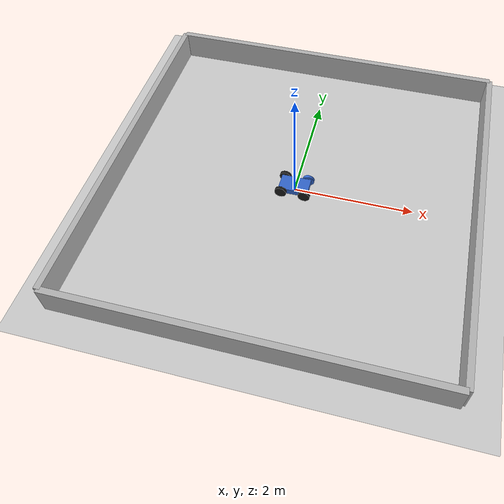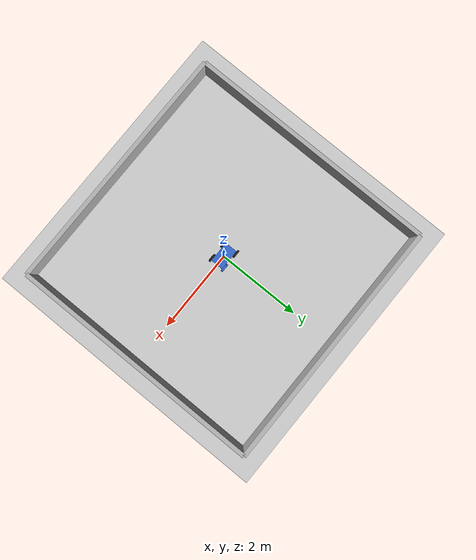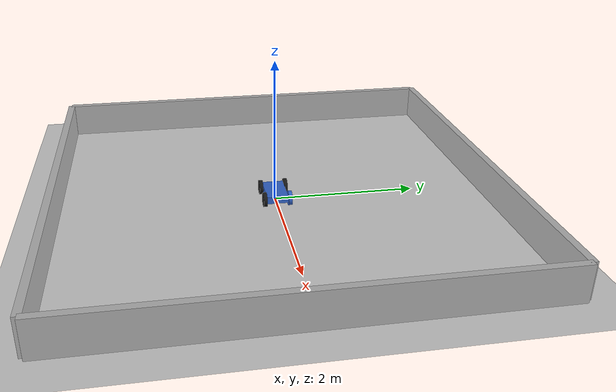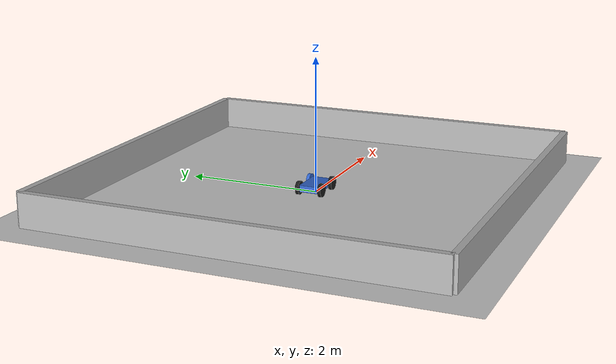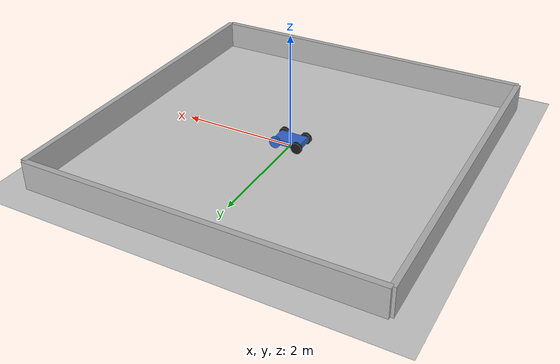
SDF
<?xml version="1.0" ?>
<sdf version="1.9">
  <world name="box_car_world">

    <plugin filename="gz-sim-physics-system" name="gz::sim::systems::Physics"/>
    <plugin filename="gz-sim-scene-broadcaster-system" name="gz::sim::systems::SceneBroadcaster"/>
    <!-- Sensors plugin removed: avoids Ogre2 headless crash in Docker (no camera, no rendering) -->

    <light name="sun" type="directional">
      <cast_shadows>true</cast_shadows>
      <pose>0 0 10 0 0 0</pose>
      <diffuse>1 1 1 1</diffuse>
      <specular>0.2 0.2 0.2 1</specular>
    </light>

    <model name="ground_plane">
      <static>true</static>
      <link name="link">
        <collision name="col">
          <geometry>
            <plane>
              <normal>0 0 1</normal>
              <size>100 100</size>
            </plane>
          </geometry>
        </collision>
        <visual name="vis">
          <geometry>
            <plane>
              <normal>0 0 1</normal>
              <size>100 100</size>
            </plane>
          </geometry>
          <material>
            <ambient>0.8 0.8 0.8 1</ambient>
            <diffuse>0.8 0.8 0.8 1</diffuse>
            <specular>0.1 0.1 0.1 1</specular>
          </material>
        </visual>
      </link>
    </model>

    <!-- Room walls: 6 m x 6 m around spawn at origin. Static, collision + visual. -->
    <model name="wall_north">
      <static>true</static>
      <pose>0 3 0.25 0 0 0</pose>
      <link name="link">
        <collision name="col">
          <geometry>
            <box><size>6 0.1 0.5</size></box>
          </geometry>
        </collision>
        <visual name="vis">
          <geometry>
            <box><size>6 0.1 0.5</size></box>
          </geometry>
          <material>
            <ambient>0.6 0.6 0.6 1</ambient>
            <diffuse>0.7 0.7 0.7 1</diffuse>
            <specular>0.1 0.1 0.1 1</specular>
          </material>
        </visual>
      </link>
    </model>
    <model name="wall_south">
      <static>true</static>
      <pose>0 -3 0.25 0 0 0</pose>
      <link name="link">
        <collision name="col">
          <geometry>
            <box><size>6 0.1 0.5</size></box>
          </geometry>
        </collision>
        <visual name="vis">
          <geometry>
            <box><size>6 0.1 0.5</size></box>
          </geometry>
          <material>
            <ambient>0.6 0.6 0.6 1</ambient>
            <diffuse>0.7 0.7 0.7 1</diffuse>
            <specular>0.1 0.1 0.1 1</specular>
          </material>
        </visual>
      </link>
    </model>
    <model name="wall_east">
      <static>true</static>
      <pose>3 0 0.25 0 0 0</pose>
      <link name="link">
        <collision name="col">
          <geometry>
            <box><size>0.1 6 0.5</size></box>
          </geometry>
        </collision>
        <visual name="vis">
          <geometry>
            <box><size>0.1 6 0.5</size></box>
          </geometry>
          <material>
            <ambient>0.6 0.6 0.6 1</ambient>
            <diffuse>0.7 0.7 0.7 1</diffuse>
            <specular>0.1 0.1 0.1 1</specular>
          </material>
        </visual>
      </link>
    </model>
    <model name="wall_west">
      <static>true</static>
      <pose>-3 0 0.25 0 0 0</pose>
      <link name="link">
        <collision name="col">
          <geometry>
            <box><size>0.1 6 0.5</size></box>
          </geometry>
        </collision>
        <visual name="vis">
          <geometry>
            <box><size>0.1 6 0.5</size></box>
          </geometry>
          <material>
            <ambient>0.6 0.6 0.6 1</ambient>
            <diffuse>0.7 0.7 0.7 1</diffuse>
            <specular>0.1 0.1 0.1 1</specular>
          </material>
        </visual>
      </link>
    </model>

    <include>
      <uri>model://box_car</uri>
      <pose>0 0 0.1 0 0 0</pose>
    </include>

  </world>
</sdf>

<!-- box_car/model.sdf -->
<sdf version="1.9">
  <model name="box_car">
    <pose>0 0 0.1 0 0 0</pose>

    <!-- Chassis: 0.5 x 0.3 x 0.1 m -->
    <link name="chassis">
      <inertial>
        <mass>5.0</mass>
        <inertia>
          <ixx>0.048</ixx><iyy>0.108</iyy><izz>0.142</izz>
          <ixy>0</ixy><ixz>0</ixz><iyz>0</iyz>
        </inertia>
      </inertial>
      <collision name="chassis_col">
        <geometry>
          <box><size>0.5 0.3 0.1</size></box>
        </geometry>
      </collision>
      <visual name="chassis_vis">
        <geometry>
          <box><size>0.5 0.3 0.1</size></box>
        </geometry>
        <material>
          <ambient>0.2 0.3 0.5 1</ambient>
          <diffuse>0.2 0.4 0.8 1</diffuse>
          <specular>0.3 0.3 0.3 1</specular>
        </material>
      </visual>

      <sensor name="imu_sensor" type="imu">
        <always_on>true</always_on>
        <update_rate>100</update_rate>
        <topic>/box_car/imu</topic>
        <imu>
          <angular_velocity>
            <x><noise type="gaussian"><mean>0</mean><stddev>0.0002</stddev></noise></x>
            <y><noise type="gaussian"><mean>0</mean><stddev>0.0002</stddev></noise></y>
            <z><noise type="gaussian"><mean>0</mean><stddev>0.0002</stddev></noise></z>
          </angular_velocity>
          <linear_acceleration>
            <x><noise type="gaussian"><mean>0</mean><stddev>0.017</stddev></noise></x>
            <y><noise type="gaussian"><mean>0</mean><stddev>0.017</stddev></noise></y>
            <z><noise type="gaussian"><mean>0</mean><stddev>0.017</stddev></noise></z>
          </linear_acceleration>
        </imu>
      </sensor>
      <!-- Camera removed: Ogre2 headless crashes in Docker. -->
    </link>

    <!-- Front-left wheel
         pose on link (relative to model origin): x=+0.2, y=+0.175, z=0
         rolled pi/2 about X so cylinder Z-axis aligns with world Y (axle direction) -->
    <link name="wheel_fl">
      <pose>0.2 0.175 0 1.5707963 0 0</pose>
      <inertial>
        <mass>0.5</mass>
        <inertia>
          <ixx>0.00125</ixx><iyy>0.00125</iyy><izz>0.0025</izz>
          <ixy>0</ixy><ixz>0</ixz><iyz>0</iyz>
        </inertia>
      </inertial>
      <collision name="wheel_fl_col">
        <geometry>
          <cylinder><radius>0.1</radius><length>0.05</length></cylinder>
        </geometry>
      </collision>
      <visual name="wheel_fl_vis">
        <geometry>
          <cylinder><radius>0.1</radius><length>0.05</length></cylinder>
        </geometry>
        <material>
          <ambient>0.1 0.1 0.1 1</ambient>
          <diffuse>0.2 0.4 0.8 1</diffuse>
          <specular>0.5 0.5 0.5 1</specular>
        </material>
      </visual>
    </link>
    <joint name="joint_wheel_fl" type="revolute">
      <parent>chassis</parent>
      <child>wheel_fl</child>
      <axis>
        <xyz>0 1 0</xyz>
        <limit><lower>-1e16</lower><upper>1e16</upper></limit>
      </axis>
    </joint>

    <!-- Front-right wheel -->
    <link name="wheel_fr">
      <pose>0.2 -0.175 0 1.5707963 0 0</pose>
      <inertial>
        <mass>0.5</mass>
        <inertia>
          <ixx>0.00125</ixx><iyy>0.00125</iyy><izz>0.0025</izz>
          <ixy>0</ixy><ixz>0</ixz><iyz>0</iyz>
        </inertia>
      </inertial>
      <collision name="wheel_fr_col">
        <geometry>
          <cylinder><radius>0.1</radius><length>0.05</length></cylinder>
        </geometry>
      </collision>
      <visual name="wheel_fr_vis">
        <geometry>
          <cylinder><radius>0.1</radius><length>0.05</length></cylinder>
        </geometry>
        <material>
          <ambient>0.1 0.1 0.1 1</ambient>
          <diffuse>0.1 0.1 0.1 1</diffuse>
          <specular>0.05 0.05 0.05 1</specular>
        </material>
      </visual>
    </link>
    <joint name="joint_wheel_fr" type="revolute">
      <parent>chassis</parent>
      <child>wheel_fr</child>
      <axis>
        <xyz>0 1 0</xyz>
        <limit><lower>-1e16</lower><upper>1e16</upper></limit>
      </axis>
    </joint>

    <!-- Rear-left wheel -->
    <link name="wheel_rl">
      <pose>-0.2 0.175 0 1.5707963 0 0</pose>
      <inertial>
        <mass>0.5</mass>
        <inertia>
          <ixx>0.00125</ixx><iyy>0.00125</iyy><izz>0.0025</izz>
          <ixy>0</ixy><ixz>0</ixz><iyz>0</iyz>
        </inertia>
      </inertial>
      <collision name="wheel_rl_col">
        <geometry>
          <cylinder><radius>0.1</radius><length>0.05</length></cylinder>
        </geometry>
      </collision>
      <visual name="wheel_rl_vis">
        <geometry>
          <cylinder><radius>0.1</radius><length>0.05</length></cylinder>
        </geometry>
        <material>
          <ambient>0.1 0.1 0.1 1</ambient>
          <diffuse>0.1 0.1 0.1 1</diffuse>
          <specular>0.05 0.05 0.05 1</specular>
        </material>
      </visual>
    </link>
    <joint name="joint_wheel_rl" type="revolute">
      <parent>chassis</parent>
      <child>wheel_rl</child>
      <axis>
        <xyz>0 1 0</xyz>
        <limit><lower>-1e16</lower><upper>1e16</upper></limit>
      </axis>
    </joint>

    <!-- Rear-right wheel -->
    <link name="wheel_rr">
      <pose>-0.2 -0.175 0 1.5707963 0 0</pose>
      <inertial>
        <mass>0.5</mass>
        <inertia>
          <ixx>0.00125</ixx><iyy>0.00125</iyy><izz>0.0025</izz>
          <ixy>0</ixy><ixz>0</ixz><iyz>0</iyz>
        </inertia>
      </inertial>
      <collision name="wheel_rr_col">
        <geometry>
          <cylinder><radius>0.1</radius><length>0.05</length></cylinder>
        </geometry>
      </collision>
      <visual name="wheel_rr_vis">
        <geometry>
          <cylinder><radius>0.1</radius><length>0.05</length></cylinder>
        </geometry>
        <material>
          <ambient>0.1 0.1 0.1 1</ambient>
          <diffuse>0.1 0.1 0.1 1</diffuse>
          <specular>0.05 0.05 0.05 1</specular>
        </material>
      </visual>
    </link>
    <joint name="joint_wheel_rr" type="revolute">
      <parent>chassis</parent>
      <child>wheel_rr</child>
      <axis>
        <xyz>0 1 0</xyz>
        <limit><lower>-1e16</lower><upper>1e16</upper></limit>
      </axis>
    </joint>

    <plugin filename="gz-sim-joint-state-publisher-system" name="gz::sim::systems::JointStatePublisher">
      <topic>/world/box_car_world/model/box_car/joint_state</topic>
    </plugin>
    <plugin filename="gz-sim-imu-system" name="gz::sim::systems::Imu"/>
    <plugin filename="gz-sim-diff-drive-system" name="gz::sim::systems::DiffDrive">
      <topic>/world/box_car_world/model/box_car/cmd_vel</topic>
      <left_joint>joint_wheel_fl</left_joint>
      <left_joint>joint_wheel_rl</left_joint>
      <right_joint>joint_wheel_fr</right_joint>
      <right_joint>joint_wheel_rr</right_joint>
      <wheel_separation>0.35</wheel_separation>
      <wheel_radius>0.1</wheel_radius>
      <max_linear_acceleration>1.0</max_linear_acceleration>
      <max_angular_acceleration>1.0</max_angular_acceleration>
      <max_linear_velocity>1.0</max_linear_velocity>
      <max_angular_velocity>2.0</max_angular_velocity>
    </plugin>
    <plugin filename="gz-sim-pose-publisher-system" name="gz::sim::systems::PosePublisher">
      <publish_model_pose>true</publish_model_pose>
      <publish_link_pose>false</publish_link_pose>
      <publish_collision_pose>false</publish_collision_pose>
      <publish_visual_pose>false</publish_visual_pose>
      <publish_nested_model_pose>false</publish_nested_model_pose>
    </plugin>
  </model>
</sdf>
